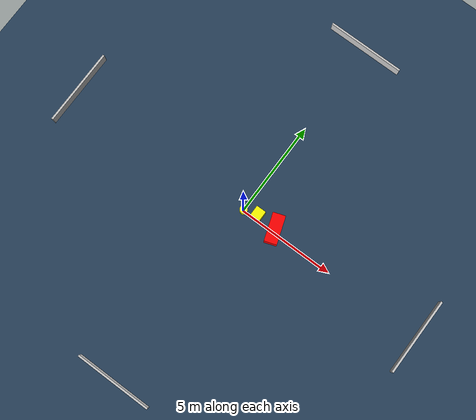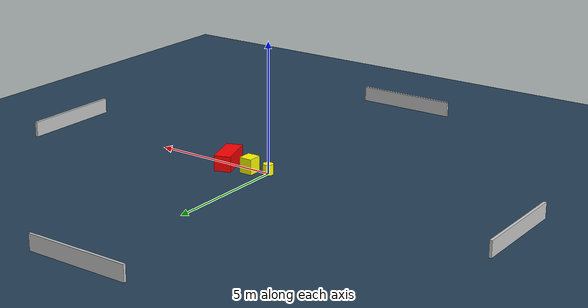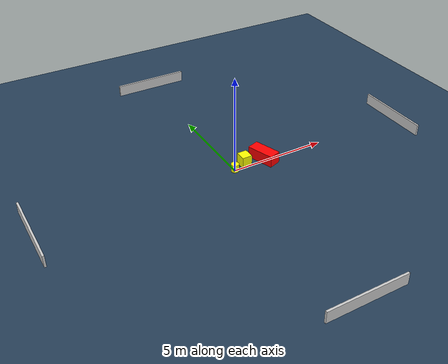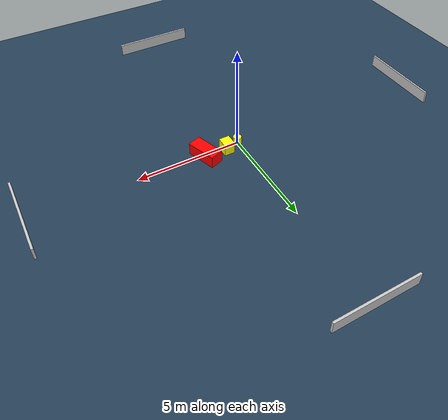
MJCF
<?xml version="1.0" ?>
<mujoco model="generated_environment">
  <option timestep="0.01" integrator="RK4" cone="elliptic"/>
  <default>
    <geom density="1"/>
  </default>
  <asset>
    <texture builtin="gradient" height="3072" name="skybox" rgb1="0.3 0.5 0.7" rgb2="0 0 0" type="skybox" width="512"/>
    <texture builtin="checker" height="300" name="groundplane" rgb1="0.2 0.3 0.4" rgb2="0.1 0.2 0.3" type="2d" width="300"/>
    <material name="groundplane" reflectance="0.2" texrepeat="5 5" texture="groundplane"/>
  </asset>
  <worldbody>
    <light dir="0 0 -1" directional="true" pos="0 0 1.5"/>
    <geom condim="3" friction="0.5 0.005 0.001" material="groundplane" name="floor" pos="0 0 0" size="0 0 0.05" type="plane"/>
    <body name="walls">
      <geom name="wall_1" condim="4" pos="-10.0 0.0 0.3" rgba="0.800000011920929 0.800000011920929 0.800000011920929 1.0" size="0.05 2.0 0.3" type="box"/>
      <geom name="wall_2" condim="4" pos="10.0 0.0 0.3" rgba="0.800000011920929 0.800000011920929 0.800000011920929 1.0" size="0.05 2.0 0.3" type="box"/>
      <geom name="wall_3" condim="4" pos="0.0 -10.0 0.3" rgba="0.800000011920929 0.800000011920929 0.800000011920929 1.0" size="2.0 0.05 0.3" type="box"/>
      <geom name="wall_4" condim="4" pos="0.0 10.0 0.3" rgba="0.800000011920929 0.800000011920929 0.800000011920929 1.0" size="2.0 0.05 0.3" type="box"/>
    </body>
    <body name="robot">
      <joint name="joint_x" type="slide" pos="0 0 0" axis="1 0 0"/>
      <joint name="joint_y" type="slide" pos="0 0 0" axis="0 1 0"/>
      <geom name="robot" type="cylinder" pos="0.0 0.0 0.2" size="0.2 0.2 0.0" mass="5.0" friction="1.0 0.005 0.0001" condim="4" rgba="1.0 1.0 0.0 1.0"/>
    </body>
    <body name="obstacle_1_movable">
      <geom name="obstacle_1_movable" condim="4" pos="0.6785143107070594 0.22890221584588066 0.3" euler="0 0 0.15749821617882187" friction="0.0 0.005 0.001" rgba="1.0 1.0 0.0 1.0" size="0.25641233063904123 0.2788829631061971 0.3" type="box" mass="0.1"/>
      <joint type="free"/>
    </body>
    <body name="obstacle_2_static">
      <geom name="obstacle_2_static" condim="4" pos="1.738845924186955 0.13276080263514797 0.3" euler="0 0 108.90765897894381" friction="0.0 0.005 0.001" rgba="1.0 0.0 0.0 1.0" size="0.7230204501656443 0.32092664214214645 0.3" type="box"/>
    </body>
  </worldbody>
  <actuator>
    <motor name="actuator_x" joint="joint_x" gear="1" ctrlrange="-1 1"/>
    <motor name="actuator_y" joint="joint_y" gear="1" ctrlrange="-1 1"/>
  </actuator>
</mujoco>
